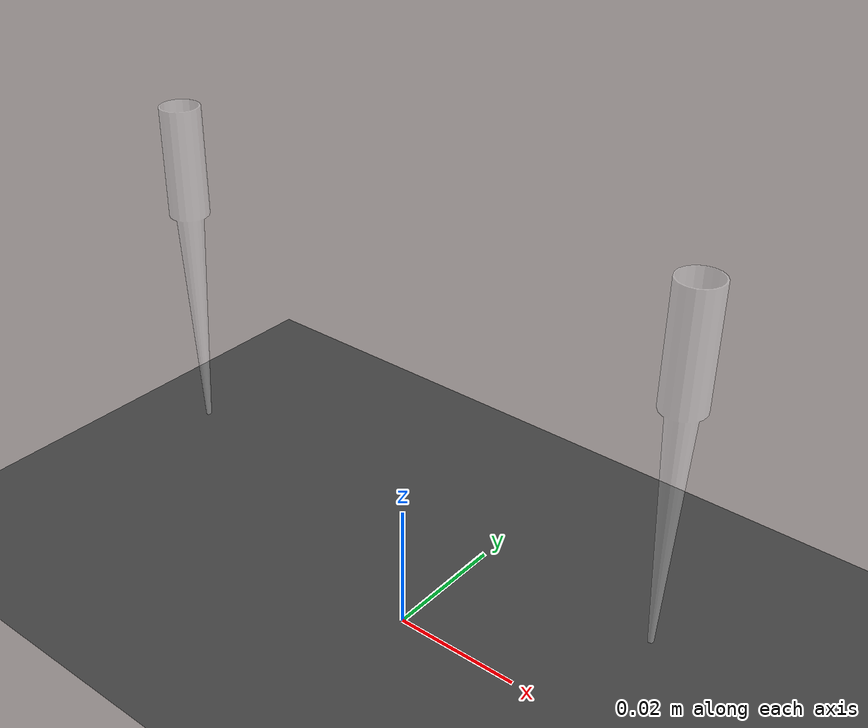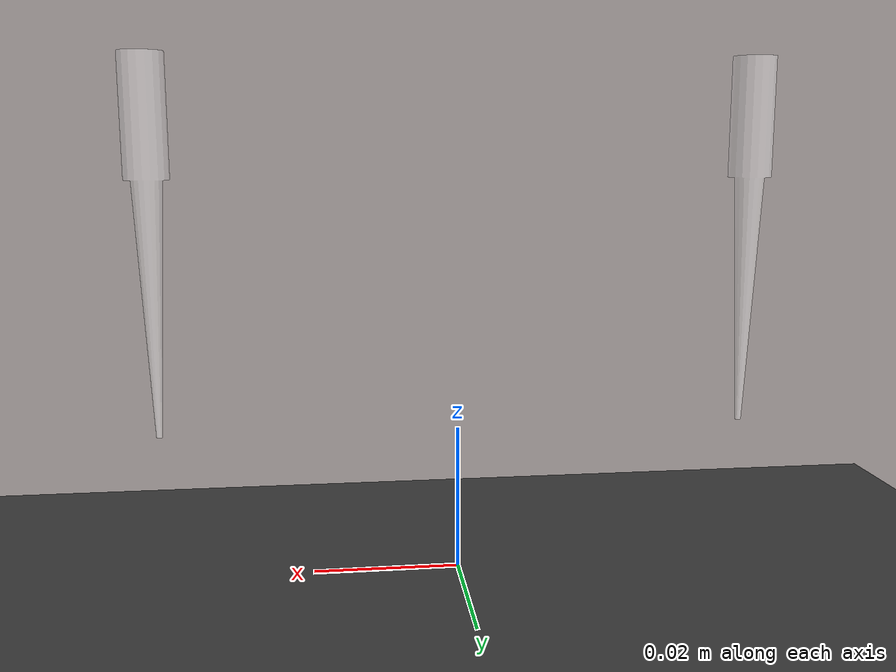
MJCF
<mujoco model="tip_ring_proxy_collision_check">
  <compiler angle="radian" />
  <option timestep="0.002" integrator="implicitfast" cone="elliptic" />

  <visual>
    <headlight diffuse="0.7 0.7 0.7" ambient="0.35 0.35 0.35" specular="0.1 0.1 0.1" />
    <global azimuth="135" elevation="-20" offwidth="1280" offheight="720" />
  </visual>

  <asset>
    <texture name="grid" type="2d" builtin="checker" width="512" height="512" rgb1="0.24 0.24 0.24" rgb2="0.31 0.31 0.31" />
    <material name="floor_grid" texture="grid" texrepeat="4 4" reflectance="0.08" />
    <material name="tip_clear" rgba="1 1 1 0.35" />
    <material name="collision_original" rgba="1 0.45 0.1 0.35" />
    <material name="collision_ring" rgba="0.1 0.65 1 0.45" />
    <material name="collision_cone" rgba="0.75 0.75 0.75 0.45" />
    <material name="connector_ref" rgba="0.95 0.1 0.1 0.75" />

    <mesh name="tip_visual" file="/data/tianang/projects/AutoBio/autobio/assets/container/tip_200ul_vis/visual.obj" scale="0.001 0.001 0.001" />
    <mesh name="tip_original_collision" file="/data/tianang/projects/AutoBio/autobio/assets/container/tip_200ul_col/tip_collision_0.obj" scale="0.001 0.001 0.001" />
    <mesh name="tip_upper_ring_wedge" file="../assets/tip_200ul_upper_ring_wedge_12.obj" scale="0.001 0.001 0.001" />
    <mesh name="tip_lower_cone_wedge" file="../assets/tip_200ul_lower_cone_wedge_12.obj" scale="0.001 0.001 0.001" />
  </asset>

  <worldbody>
    <light name="key" pos="0.25 -0.55 0.7" dir="-0.3 0.7 -1" diffuse="0.8 0.8 0.8" />
    <geom name="floor" type="plane" size="0.15 0.12 0.02" material="floor_grid" />

    <body name="original_solid_tip" pos="-0.04 0 0.07">
      <geom name="original_visual" type="mesh" contype="0" conaffinity="0" group="2" mesh="tip_visual" material="tip_clear" />
      <geom name="original_lower_solid_collision" type="mesh" group="3" mesh="tip_original_collision" material="collision_original" />
      <geom name="original_upper_solid_collision" size="0.00287797 0.008" pos="0 0 -0.008" type="cylinder" group="3" material="collision_original" />
      <geom name="original_connector_reference" size="0.00199955 0.012" pos="0 0 0.004" type="cylinder" contype="0" conaffinity="0" group="5" material="connector_ref" />
    </body>

    <body name="ring_proxy_tip">
      <geom name="ring_proxy_visual" type="mesh" contype="0" conaffinity="0" group="2" mesh="tip_visual" pos="0.04 0 0.07" material="tip_clear" />
      <geom name="ring_block_00" type="mesh" mesh="tip_upper_ring_wedge" pos="0.040000 0 0.07" euler="0 0 0" group="3" material="collision_ring" />
      <geom name="ring_block_01" type="mesh" mesh="tip_upper_ring_wedge" pos="0.040000 0 0.07" euler="0 0 0.523598775598" group="3" material="collision_ring" />
      <geom name="ring_block_02" type="mesh" mesh="tip_upper_ring_wedge" pos="0.040000 0 0.07" euler="0 0 1.0471975512" group="3" material="collision_ring" />
      <geom name="ring_block_03" type="mesh" mesh="tip_upper_ring_wedge" pos="0.040000 0 0.07" euler="0 0 1.57079632679" group="3" material="collision_ring" />
      <geom name="ring_block_04" type="mesh" mesh="tip_upper_ring_wedge" pos="0.040000 0 0.07" euler="0 0 2.09439510239" group="3" material="collision_ring" />
      <geom name="ring_block_05" type="mesh" mesh="tip_upper_ring_wedge" pos="0.040000 0 0.07" euler="0 0 2.61799387799" group="3" material="collision_ring" />
      <geom name="ring_block_06" type="mesh" mesh="tip_upper_ring_wedge" pos="0.040000 0 0.07" euler="0 0 3.14159265359" group="3" material="collision_ring" />
      <geom name="ring_block_07" type="mesh" mesh="tip_upper_ring_wedge" pos="0.040000 0 0.07" euler="0 0 3.66519142919" group="3" material="collision_ring" />
      <geom name="ring_block_08" type="mesh" mesh="tip_upper_ring_wedge" pos="0.040000 0 0.07" euler="0 0 4.18879020479" group="3" material="collision_ring" />
      <geom name="ring_block_09" type="mesh" mesh="tip_upper_ring_wedge" pos="0.040000 0 0.07" euler="0 0 4.71238898038" group="3" material="collision_ring" />
      <geom name="ring_block_10" type="mesh" mesh="tip_upper_ring_wedge" pos="0.040000 0 0.07" euler="0 0 5.23598775598" group="3" material="collision_ring" />
      <geom name="ring_block_11" type="mesh" mesh="tip_upper_ring_wedge" pos="0.040000 0 0.07" euler="0 0 5.75958653158" group="3" material="collision_ring" />
      <geom name="cone_block_00" type="mesh" mesh="tip_lower_cone_wedge" pos="0.040000 0 0.07" euler="0 0 0" group="3" material="collision_cone" />
      <geom name="cone_block_01" type="mesh" mesh="tip_lower_cone_wedge" pos="0.040000 0 0.07" euler="0 0 0.523598775598" group="3" material="collision_cone" />
      <geom name="cone_block_02" type="mesh" mesh="tip_lower_cone_wedge" pos="0.040000 0 0.07" euler="0 0 1.0471975512" group="3" material="collision_cone" />
      <geom name="cone_block_03" type="mesh" mesh="tip_lower_cone_wedge" pos="0.040000 0 0.07" euler="0 0 1.57079632679" group="3" material="collision_cone" />
      <geom name="cone_block_04" type="mesh" mesh="tip_lower_cone_wedge" pos="0.040000 0 0.07" euler="0 0 2.09439510239" group="3" material="collision_cone" />
      <geom name="cone_block_05" type="mesh" mesh="tip_lower_cone_wedge" pos="0.040000 0 0.07" euler="0 0 2.61799387799" group="3" material="collision_cone" />
      <geom name="cone_block_06" type="mesh" mesh="tip_lower_cone_wedge" pos="0.040000 0 0.07" euler="0 0 3.14159265359" group="3" material="collision_cone" />
      <geom name="cone_block_07" type="mesh" mesh="tip_lower_cone_wedge" pos="0.040000 0 0.07" euler="0 0 3.66519142919" group="3" material="collision_cone" />
      <geom name="cone_block_08" type="mesh" mesh="tip_lower_cone_wedge" pos="0.040000 0 0.07" euler="0 0 4.18879020479" group="3" material="collision_cone" />
      <geom name="cone_block_09" type="mesh" mesh="tip_lower_cone_wedge" pos="0.040000 0 0.07" euler="0 0 4.71238898038" group="3" material="collision_cone" />
      <geom name="cone_block_10" type="mesh" mesh="tip_lower_cone_wedge" pos="0.040000 0 0.07" euler="0 0 5.23598775598" group="3" material="collision_cone" />
      <geom name="cone_block_11" type="mesh" mesh="tip_lower_cone_wedge" pos="0.040000 0 0.07" euler="0 0 5.75958653158" group="3" material="collision_cone" />
      <geom name="ring_proxy_connector_reference" size="0.00199955 0.012" pos="0.04 0 0.074" type="cylinder" contype="0" conaffinity="0" group="5" material="connector_ref" />
    </body>

    <camera name="check_camera" pos="0 -0.18 0.095" xyaxes="1 0 0 0 0.25 0.97" />
  </worldbody>
</mujoco>
